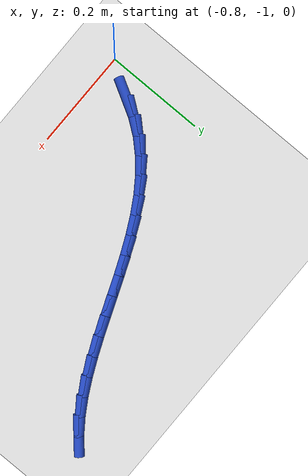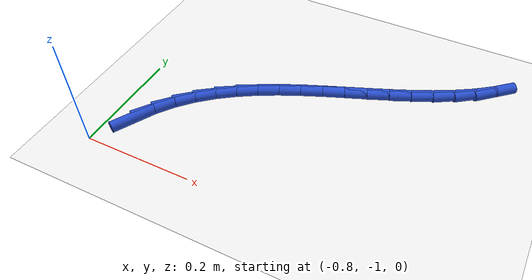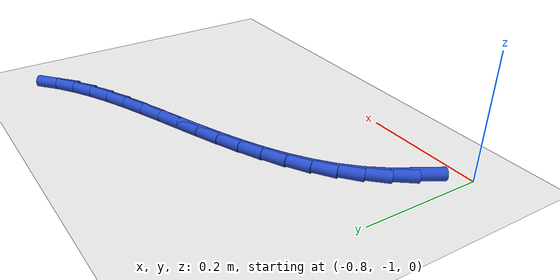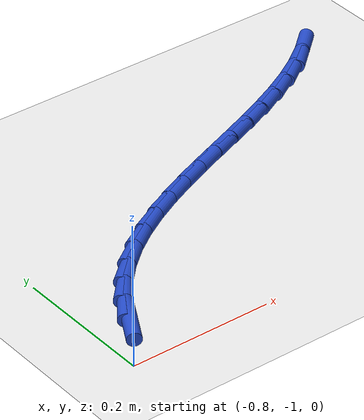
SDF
<sdf version="1.6">
 <world name="default">
  <model name="ground_plane">
   <static>1</static>
   <link name="link">
    <collision name="collision">
     <geometry><plane><normal>0 0 1</normal><size>100 100</size></plane></geometry>
     <surface><friction><ode><mu>100</mu><mu2>50</mu2></ode></friction></surface>
    </collision>
    <visual name="visual">
     <cast_shadows>0</cast_shadows>
     <geometry><plane><normal>0 0 1</normal><size>100 100</size></plane></geometry>
     <material>
      <script><uri>file://media/materials/scripts/gazebo.material</uri><name>Gazebo/WhiteGlow</name></script>
     </material>
    </visual>
   </link>
  </model>
  <model name="line">
   <link name="link_176">
    <pose>-0.7559076321886934 -0.9345318453496864 0.01 0 1.57 1.059179796086205</pose>
    <collision name="collision">
     <geometry><cylinder><radius>0.01</radius><length>0.08</length></cylinder></geometry>
    </collision>
    <visual name="visual">
     <material>
      <script><name>Gazebo/Blue</name><uri>file://media/materials/scripts/gazebo.material</uri></script>
     </material>
     <geometry><cylinder><radius>0.01</radius><length>0.08</length></cylinder></geometry>
    </visual>
   </link>
   <link name="link_177">
    <pose>-0.7368059333114841 -0.900511758385391 0.01 0 1.57 0.9293293570772792</pose>
    <collision name="collision">
     <geometry><cylinder><radius>0.01</radius><length>0.08</length></cylinder></geometry>
    </collision>
    <visual name="visual">
     <material>
      <script><name>Gazebo/Blue</name><uri>file://media/materials/scripts/gazebo.material</uri></script>
     </material>
     <geometry><cylinder><radius>0.01</radius><length>0.08</length></cylinder></geometry>
    </visual>
   </link>
   <link name="link_178">
    <pose>-0.7141666015479021 -0.8701977136637674 0.01 0 1.57 0.8081531396676236</pose>
    <collision name="collision">
     <geometry><cylinder><radius>0.01</radius><length>0.08</length></cylinder></geometry>
    </collision>
    <visual name="visual">
     <material>
      <script><name>Gazebo/Blue</name><uri>file://media/materials/scripts/gazebo.material</uri></script>
     </material>
     <geometry><cylinder><radius>0.01</radius><length>0.08</length></cylinder></geometry>
    </visual>
   </link>
   <link name="link_179">
    <pose>-0.6883683913164483 -0.8431978777416518 0.01 0 1.57 0.7001281592367264</pose>
    <collision name="collision">
     <geometry><cylinder><radius>0.01</radius><length>0.08</length></cylinder></geometry>
    </collision>
    <visual name="visual">
     <material>
      <script><name>Gazebo/Blue</name><uri>file://media/materials/scripts/gazebo.material</uri></script>
     </material>
     <geometry><cylinder><radius>0.01</radius><length>0.08</length></cylinder></geometry>
    </visual>
   </link>
   <link name="link_180">
    <pose>-0.6597900570356244 -0.8191204171758804 0.01 0 1.57 0.6077110710764446</pose>
    <collision name="collision">
     <geometry><cylinder><radius>0.01</radius><length>0.08</length></cylinder></geometry>
    </collision>
    <visual name="visual">
     <material>
      <script><name>Gazebo/Blue</name><uri>file://media/materials/scripts/gazebo.material</uri></script>
     </material>
     <geometry><cylinder><radius>0.01</radius><length>0.08</length></cylinder></geometry>
    </visual>
   </link>
   <link name="link_181">
    <pose>-0.6288103531239317 -0.7975734985232891 0.01 0 1.57 0.5316133325843051</pose>
    <collision name="collision">
     <geometry><cylinder><radius>0.01</radius><length>0.08</length></cylinder></geometry>
    </collision>
    <visual name="visual">
     <material>
      <script><name>Gazebo/Blue</name><uri>file://media/materials/scripts/gazebo.material</uri></script>
     </material>
     <geometry><cylinder><radius>0.01</radius><length>0.08</length></cylinder></geometry>
    </visual>
   </link>
   <link name="link_182">
    <pose>-0.5958080339998709 -0.7781652883407142 0.01 0 1.57 0.47142734447375606</pose>
    <collision name="collision">
     <geometry><cylinder><radius>0.01</radius><length>0.08</length></cylinder></geometry>
    </collision>
    <visual name="visual">
     <material>
      <script><name>Gazebo/Blue</name><uri>file://media/materials/scripts/gazebo.material</uri></script>
     </material>
     <geometry><cylinder><radius>0.01</radius><length>0.08</length></cylinder></geometry>
    </visual>
   </link>
   <link name="link_183">
    <pose>-0.561161854081943 -0.7605039531849915 0.01 0 1.57 0.42623466979681185</pose>
    <collision name="collision">
     <geometry><cylinder><radius>0.01</radius><length>0.08</length></cylinder></geometry>
    </collision>
    <visual name="visual">
     <material>
      <script><name>Gazebo/Blue</name><uri>file://media/materials/scripts/gazebo.material</uri></script>
     </material>
     <geometry><cylinder><radius>0.01</radius><length>0.08</length></cylinder></geometry>
    </visual>
   </link>
   <link name="link_184">
    <pose>-0.5252505677886508 -0.7441976596129581 0.01 0 1.57 0.3950396960739531</pose>
    <collision name="collision">
     <geometry><cylinder><radius>0.01</radius><length>0.08</length></cylinder></geometry>
    </collision>
    <visual name="visual">
     <material>
      <script><name>Gazebo/Blue</name><uri>file://media/materials/scripts/gazebo.material</uri></script>
     </material>
     <geometry><cylinder><radius>0.01</radius><length>0.08</length></cylinder></geometry>
    </visual>
   </link>
   <link name="link_185">
    <pose>-0.48845292953849456 -0.7288545741814496 0.01 0 1.57 0.37702641107556695</pose>
    <collision name="collision">
     <geometry><cylinder><radius>0.01</radius><length>0.08</length></cylinder></geometry>
    </collision>
    <visual name="visual">
     <material>
      <script><name>Gazebo/Blue</name><uri>file://media/materials/scripts/gazebo.material</uri></script>
     </material>
     <geometry><cylinder><radius>0.01</radius><length>0.08</length></cylinder></geometry>
    </visual>
   </link>
   <link name="link_186">
    <pose>-0.4511476937499756 -0.714082863447302 0.01 0 1.57 0.37169094248338563</pose>
    <collision name="collision">
     <geometry><cylinder><radius>0.01</radius><length>0.08</length></cylinder></geometry>
    </collision>
    <visual name="visual">
     <material>
      <script><name>Gazebo/Blue</name><uri>file://media/materials/scripts/gazebo.material</uri></script>
     </material>
     <geometry><cylinder><radius>0.01</radius><length>0.08</length></cylinder></geometry>
    </visual>
   </link>
   <link name="link_187">
    <pose>-0.41371361484159525 -0.6994906939673516 0.01 0 1.57 0.37890090705861385</pose>
    <collision name="collision">
     <geometry><cylinder><radius>0.01</radius><length>0.08</length></cylinder></geometry>
    </collision>
    <visual name="visual">
     <material>
      <script><name>Gazebo/Blue</name><uri>file://media/materials/scripts/gazebo.material</uri></script>
     </material>
     <geometry><cylinder><radius>0.01</radius><length>0.08</length></cylinder></geometry>
    </visual>
   </link>
   <link name="link_188">
    <pose>-0.3765294472318548 -0.6846862322984348 0.01 0 1.57 0.39891268104919586</pose>
    <collision name="collision">
     <geometry><cylinder><radius>0.01</radius><length>0.08</length></cylinder></geometry>
    </collision>
    <visual name="visual">
     <material>
      <script><name>Gazebo/Blue</name><uri>file://media/materials/scripts/gazebo.material</uri></script>
     </material>
     <geometry><cylinder><radius>0.01</radius><length>0.08</length></cylinder></geometry>
    </visual>
   </link>
   <link name="link_189">
    <pose>-0.3399739453392546 -0.6692776449973871 0.01 0 1.57 0.43235534933463393</pose>
    <collision name="collision">
     <geometry><cylinder><radius>0.01</radius><length>0.08</length></cylinder></geometry>
    </collision>
    <visual name="visual">
     <material>
      <script><name>Gazebo/Blue</name><uri>file://media/materials/scripts/gazebo.material</uri></script>
     </material>
     <geometry><cylinder><radius>0.01</radius><length>0.08</length></cylinder></geometry>
    </visual>
   </link>
   <link name="link_190">
    <pose>-0.30442586358229773 -0.6528730986210453 0.01 0 1.57 0.48016763573051596</pose>
    <collision name="collision">
     <geometry><cylinder><radius>0.01</radius><length>0.08</length></cylinder></geometry>
    </collision>
    <visual name="visual">
     <material>
      <script><name>Gazebo/Blue</name><uri>file://media/materials/scripts/gazebo.material</uri></script>
     </material>
     <geometry><cylinder><radius>0.01</radius><length>0.08</length></cylinder></geometry>
    </visual>
   </link>
   <link name="link_191">
    <pose>-0.27026395637948447 -0.6350807597262453 0.01 0 1.57 0.5434502440960425</pose>
    <collision name="collision">
     <geometry><cylinder><radius>0.01</radius><length>0.08</length></cylinder></geometry>
    </collision>
    <visual name="visual">
     <material>
      <script><name>Gazebo/Blue</name><uri>file://media/materials/scripts/gazebo.material</uri></script>
     </material>
     <geometry><cylinder><radius>0.01</radius><length>0.08</length></cylinder></geometry>
    </visual>
   </link>
   <link name="link_192">
    <pose>-0.2378669781493161 -0.6155087948698235 0.01 0 1.57 0.6231746705991944</pose>
    <collision name="collision">
     <geometry><cylinder><radius>0.01</radius><length>0.08</length></cylinder></geometry>
    </collision>
    <visual name="visual">
     <material>
      <script><name>Gazebo/Blue</name><uri>file://media/materials/scripts/gazebo.material</uri></script>
     </material>
     <geometry><cylinder><radius>0.01</radius><length>0.08</length></cylinder></geometry>
    </visual>
   </link>
   <link name="link_193">
    <pose>-0.207613683310294 -0.5937653706086157 0.01 0 1.57 0.7196915885513111</pose>
    <collision name="collision">
     <geometry><cylinder><radius>0.01</radius><length>0.08</length></cylinder></geometry>
    </collision>
    <visual name="visual">
     <material>
      <script><name>Gazebo/Blue</name><uri>file://media/materials/scripts/gazebo.material</uri></script>
     </material>
     <geometry><cylinder><radius>0.01</radius><length>0.08</length></cylinder></geometry>
    </visual>
   </link>
  </model>
 </world>
</sdf>
